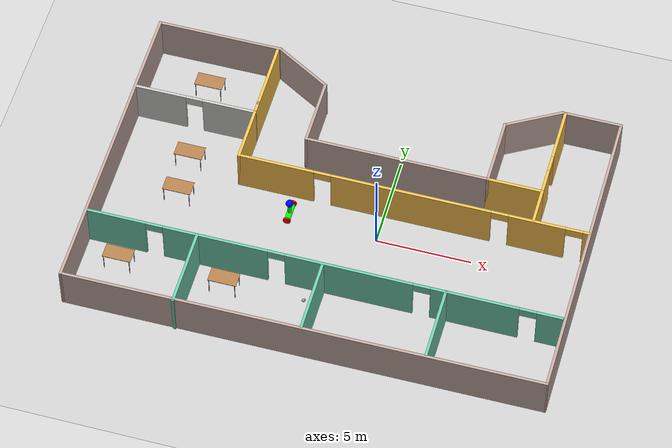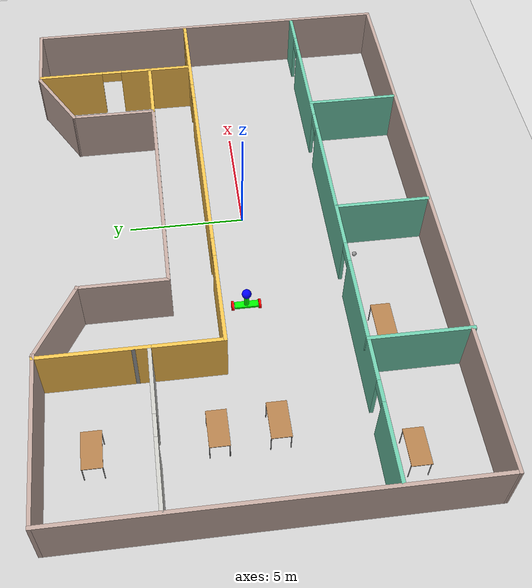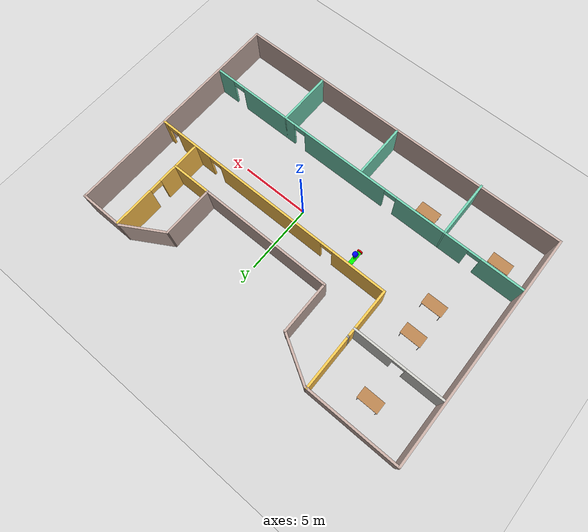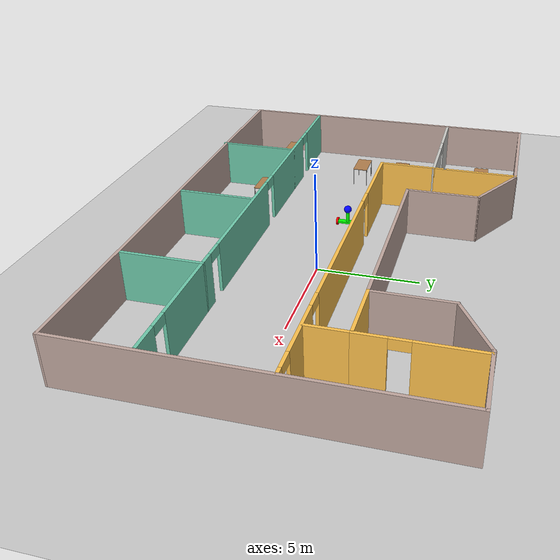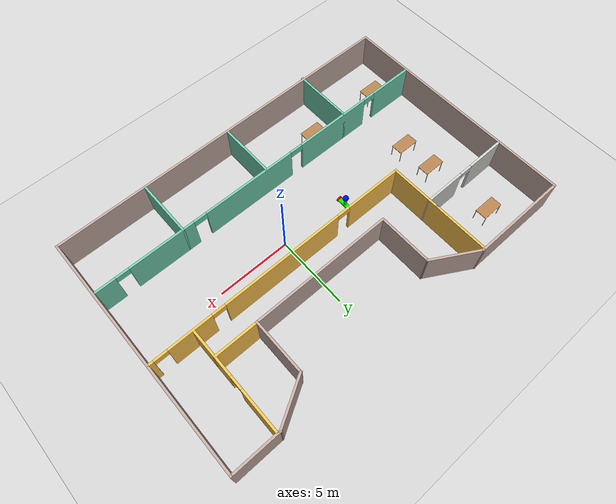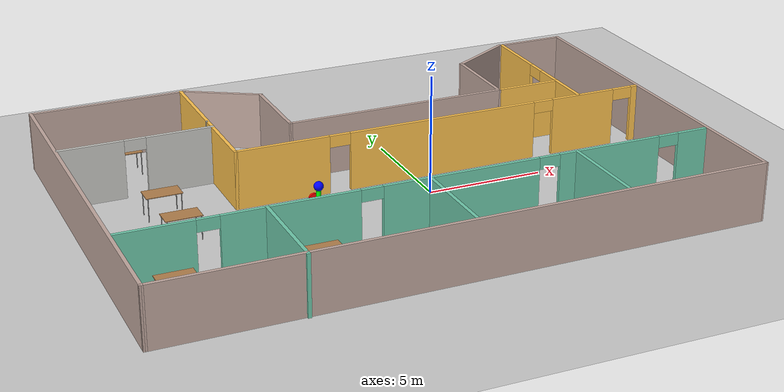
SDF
<sdf version="1.6">
 <world name="default">
  <model name="ground_plane">
   <static>1</static>
   <link name="link">
    <collision name="collision">
     <geometry><plane><normal>0 0 1</normal><size>100 100</size></plane></geometry>
     <surface>
      <contact><collide_bitmask>65535</collide_bitmask></contact>
      <friction><ode><mu>100</mu><mu2>50</mu2></ode></friction>
     </surface>
    </collision>
    <visual name="visual">
     <cast_shadows>0</cast_shadows>
     <geometry><plane><normal>0 0 1</normal><size>100 100</size></plane></geometry>
     <material>
      <script><uri>file://media/materials/scripts/gazebo.material</uri><name>Gazebo/Grey</name></script>
     </material>
    </visual>
   </link>
  </model>
  <model name="table">
   <static>1</static>
   <link name="link">
    <collision name="surface">
     <pose>0 0 1 0 -0 0</pose>
     <geometry><box><size>1.5 0.8 0.03</size></box></geometry>
     <surface><friction><ode><mu>0.6</mu><mu2>0.6</mu2></ode></friction></surface>
    </collision>
    <visual name="visual1">
     <pose>0 0 1 0 -0 0</pose>
     <geometry><box><size>1.5 0.8 0.03</size></box></geometry>
     <material>
      <script><uri>file://media/materials/scripts/gazebo.material</uri><name>Gazebo/Wood</name></script>
     </material>
    </visual>
    <collision name="front_left_leg">
     <pose>0.68 0.38 0.5 0 -0 0</pose>
     <geometry><cylinder><radius>0.02</radius><length>1</length></cylinder></geometry>
    </collision>
    <visual name="front_left_leg">
     <pose>0.68 0.38 0.5 0 -0 0</pose>
     <geometry><cylinder><radius>0.02</radius><length>1</length></cylinder></geometry>
     <material>
      <script><uri>file://media/materials/scripts/gazebo.material</uri><name>Gazebo/Grey</name></script>
     </material>
    </visual>
    <collision name="front_right_leg">
     <pose>0.68 -0.38 0.5 0 -0 0</pose>
     <geometry><cylinder><radius>0.02</radius><length>1</length></cylinder></geometry>
    </collision>
    <visual name="front_right_leg">
     <pose>0.68 -0.38 0.5 0 -0 0</pose>
     <geometry><cylinder><radius>0.02</radius><length>1</length></cylinder></geometry>
     <material>
      <script><uri>file://media/materials/scripts/gazebo.material</uri><name>Gazebo/Grey</name></script>
     </material>
    </visual>
    <collision name="back_right_leg">
     <pose>-0.68 -0.38 0.5 0 -0 0</pose>
     <geometry><cylinder><radius>0.02</radius><length>1</length></cylinder></geometry>
    </collision>
    <visual name="back_right_leg">
     <pose>-0.68 -0.38 0.5 0 -0 0</pose>
     <geometry><cylinder><radius>0.02</radius><length>1</length></cylinder></geometry>
     <material>
      <script><uri>file://media/materials/scripts/gazebo.material</uri><name>Gazebo/Grey</name></script>
     </material>
    </visual>
    <collision name="back_left_leg">
     <pose>-0.68 0.38 0.5 0 -0 0</pose>
     <geometry><cylinder><radius>0.02</radius><length>1</length></cylinder></geometry>
    </collision>
    <visual name="back_left_leg">
     <pose>-0.68 0.38 0.5 0 -0 0</pose>
     <geometry><cylinder><radius>0.02</radius><length>1</length></cylinder></geometry>
     <material>
      <script><uri>file://media/materials/scripts/gazebo.material</uri><name>Gazebo/Grey</name></script>
     </material>
    </visual>
   </link>
   <pose>-10.9259 6.86543 0 0 -0 0</pose>
  </model>
  <model name="table_1">
   <static>1</static>
   <link name="link">
    <collision name="surface">
     <pose>0 0 1 0 -0 0</pose>
     <geometry><box><size>1.5 0.8 0.03</size></box></geometry>
     <surface><friction><ode><mu>0.6</mu><mu2>0.6</mu2></ode></friction></surface>
    </collision>
    <visual name="visual1">
     <pose>0 0 1 0 -0 0</pose>
     <geometry><box><size>1.5 0.8 0.03</size></box></geometry>
     <material>
      <script><uri>file://media/materials/scripts/gazebo.material</uri><name>Gazebo/Wood</name></script>
     </material>
    </visual>
    <collision name="front_left_leg">
     <pose>0.68 0.38 0.5 0 -0 0</pose>
     <geometry><cylinder><radius>0.02</radius><length>1</length></cylinder></geometry>
    </collision>
    <visual name="front_left_leg">
     <pose>0.68 0.38 0.5 0 -0 0</pose>
     <geometry><cylinder><radius>0.02</radius><length>1</length></cylinder></geometry>
     <material>
      <script><uri>file://media/materials/scripts/gazebo.material</uri><name>Gazebo/Grey</name></script>
     </material>
    </visual>
    <collision name="front_right_leg">
     <pose>0.68 -0.38 0.5 0 -0 0</pose>
     <geometry><cylinder><radius>0.02</radius><length>1</length></cylinder></geometry>
    </collision>
    <visual name="front_right_leg">
     <pose>0.68 -0.38 0.5 0 -0 0</pose>
     <geometry><cylinder><radius>0.02</radius><length>1</length></cylinder></geometry>
     <material>
      <script><uri>file://media/materials/scripts/gazebo.material</uri><name>Gazebo/Grey</name></script>
     </material>
    </visual>
    <collision name="back_right_leg">
     <pose>-0.68 -0.38 0.5 0 -0 0</pose>
     <geometry><cylinder><radius>0.02</radius><length>1</length></cylinder></geometry>
    </collision>
    <visual name="back_right_leg">
     <pose>-0.68 -0.38 0.5 0 -0 0</pose>
     <geometry><cylinder><radius>0.02</radius><length>1</length></cylinder></geometry>
     <material>
      <script><uri>file://media/materials/scripts/gazebo.material</uri><name>Gazebo/Grey</name></script>
     </material>
    </visual>
    <collision name="back_left_leg">
     <pose>-0.68 0.38 0.5 0 -0 0</pose>
     <geometry><cylinder><radius>0.02</radius><length>1</length></cylinder></geometry>
    </collision>
    <visual name="back_left_leg">
     <pose>-0.68 0.38 0.5 0 -0 0</pose>
     <geometry><cylinder><radius>0.02</radius><length>1</length></cylinder></geometry>
     <material>
      <script><uri>file://media/materials/scripts/gazebo.material</uri><name>Gazebo/Grey</name></script>
     </material>
    </visual>
   </link>
   <pose>-10.6064 2.22277 0 0 -0 0</pose>
  </model>
  <model name="table_2">
   <static>1</static>
   <link name="link">
    <collision name="surface">
     <pose>0 0 1 0 -0 0</pose>
     <geometry><box><size>1.5 0.8 0.03</size></box></geometry>
     <surface><friction><ode><mu>0.6</mu><mu2>0.6</mu2></ode></friction></surface>
    </collision>
    <visual name="visual1">
     <pose>0 0 1 0 -0 0</pose>
     <geometry><box><size>1.5 0.8 0.03</size></box></geometry>
     <material>
      <script><uri>file://media/materials/scripts/gazebo.material</uri><name>Gazebo/Wood</name></script>
     </material>
    </visual>
    <collision name="front_left_leg">
     <pose>0.68 0.38 0.5 0 -0 0</pose>
     <geometry><cylinder><radius>0.02</radius><length>1</length></cylinder></geometry>
    </collision>
    <visual name="front_left_leg">
     <pose>0.68 0.38 0.5 0 -0 0</pose>
     <geometry><cylinder><radius>0.02</radius><length>1</length></cylinder></geometry>
     <material>
      <script><uri>file://media/materials/scripts/gazebo.material</uri><name>Gazebo/Grey</name></script>
     </material>
    </visual>
    <collision name="front_right_leg">
     <pose>0.68 -0.38 0.5 0 -0 0</pose>
     <geometry><cylinder><radius>0.02</radius><length>1</length></cylinder></geometry>
    </collision>
    <visual name="front_right_leg">
     <pose>0.68 -0.38 0.5 0 -0 0</pose>
     <geometry><cylinder><radius>0.02</radius><length>1</length></cylinder></geometry>
     <material>
      <script><uri>file://media/materials/scripts/gazebo.material</uri><name>Gazebo/Grey</name></script>
     </material>
    </visual>
    <collision name="back_right_leg">
     <pose>-0.68 -0.38 0.5 0 -0 0</pose>
     <geometry><cylinder><radius>0.02</radius><length>1</length></cylinder></geometry>
    </collision>
    <visual name="back_right_leg">
     <pose>-0.68 -0.38 0.5 0 -0 0</pose>
     <geometry><cylinder><radius>0.02</radius><length>1</length></cylinder></geometry>
     <material>
      <script><uri>file://media/materials/scripts/gazebo.material</uri><name>Gazebo/Grey</name></script>
     </material>
    </visual>
    <collision name="back_left_leg">
     <pose>-0.68 0.38 0.5 0 -0 0</pose>
     <geometry><cylinder><radius>0.02</radius><length>1</length></cylinder></geometry>
    </collision>
    <visual name="back_left_leg">
     <pose>-0.68 0.38 0.5 0 -0 0</pose>
     <geometry><cylinder><radius>0.02</radius><length>1</length></cylinder></geometry>
     <material>
      <script><uri>file://media/materials/scripts/gazebo.material</uri><name>Gazebo/Grey</name></script>
     </material>
    </visual>
   </link>
   <pose>-10.5195 -0.069603 0 0 -0 0</pose>
  </model>
  <model name="RobotModel_clone">
   <link name="link_0">
    <pose>0 0 0.2 0 -0 0</pose>
    <inertial>
     <mass>1</mass>
     <inertia>
      <ixx>0.166667</ixx>
      <ixy>0</ixy>
      <ixz>0</ixz>
      <iyy>0.166667</iyy>
      <iyz>0</iyz>
      <izz>0.166667</izz>
     </inertia>
    </inertial>
    <visual name="visual">
     <geometry><box><size>0.3 1 0.1</size></box></geometry>
     <material>
      <lighting>1</lighting>
      <script><uri>file://media/materials/scripts/gazebo.material</uri><name>Gazebo/Grey</name></script>
      <ambient>0 1 0 1</ambient>
      <diffuse>0.7 0.7 0.7 1</diffuse>
      <specular>0.01 0.01 0.01 1</specular>
      <emissive>0 0 0 1</emissive>
      <shader type="vertex"><normal_map>__default__</normal_map></shader>
     </material>
    </visual>
    <collision name="collision">
     <geometry><box><size>0.3 1 0.1</size></box></geometry>
     <surface>
      <friction>
       <ode><mu>1</mu><mu2>1</mu2><fdir1>0 0 0</fdir1><slip1>0</slip1><slip2>0</slip2></ode>
       <torsional>
        <coefficient>1</coefficient>
        <patch_radius>0</patch_radius>
        <surface_radius>0</surface_radius>
        <use_patch_radius>1</use_patch_radius>
        <ode><slip>0</slip></ode>
       </torsional>
      </friction>
      <bounce><restitution_coefficient>0</restitution_coefficient><threshold>1e+06</threshold></bounce>
      <contact>
       <collide_without_contact>0</collide_without_contact>
       <collide_without_contact_bitmask>1</collide_without_contact_bitmask>
       <collide_bitmask>1</collide_bitmask>
       <ode>
        <soft_cfm>0</soft_cfm>
        <soft_erp>0.2</soft_erp>
        <kp>1e+13</kp>
        <kd>1</kd>
        <max_vel>0.01</max_vel>
        <min_depth>0</min_depth>
       </ode>
       <bullet>
        <split_impulse>1</split_impulse>
        <split_impulse_penetration_threshold>-0.01</split_impulse_penetration_threshold>
        <soft_cfm>0</soft_cfm>
        <soft_erp>0.2</soft_erp>
        <kp>1e+13</kp>
        <kd>1</kd>
       </bullet>
      </contact>
     </surface>
    </collision>
   </link>
   <link name="link_1">
    <pose>0 -0.550023 0.200016 1.5707 -0 0</pose>
    <inertial>
     <mass>1</mass>
     <inertia><ixx>0.145833</ixx><ixy>0</ixy><ixz>0</ixz><iyy>0.145833</iyy><iyz>0</iyz><izz>0.125</izz></inertia>
    </inertial>
    <visual name="visual">
     <geometry><cylinder><radius>0.2</radius><length>0.1</length></cylinder></geometry>
     <material>
      <lighting>1</lighting>
      <script><uri>file://media/materials/scripts/gazebo.material</uri><name>Gazebo/Grey</name></script>
      <ambient>1 0 0 1</ambient>
      <diffuse>0.7 0.7 0.7 1</diffuse>
      <specular>0.01 0.01 0.01 1</specular>
      <emissive>0 0 0 1</emissive>
      <shader type="vertex"><normal_map>__default__</normal_map></shader>
     </material>
    </visual>
    <collision name="collision">
     <geometry><cylinder><radius>0.2</radius><length>0.1</length></cylinder></geometry>
     <surface>
      <friction>
       <ode><mu>1</mu><mu2>1</mu2><fdir1>0 0 0</fdir1><slip1>0</slip1><slip2>0</slip2></ode>
       <torsional>
        <coefficient>1</coefficient>
        <patch_radius>0</patch_radius>
        <surface_radius>0</surface_radius>
        <use_patch_radius>1</use_patch_radius>
        <ode><slip>0</slip></ode>
       </torsional>
      </friction>
      <bounce><restitution_coefficient>0</restitution_coefficient><threshold>1e+06</threshold></bounce>
      <contact>
       <collide_without_contact>0</collide_without_contact>
       <collide_without_contact_bitmask>1</collide_without_contact_bitmask>
       <collide_bitmask>1</collide_bitmask>
       <ode>
        <soft_cfm>0</soft_cfm>
        <soft_erp>0.2</soft_erp>
        <kp>1e+13</kp>
        <kd>1</kd>
        <max_vel>0.01</max_vel>
        <min_depth>0</min_depth>
       </ode>
       <bullet>
        <split_impulse>1</split_impulse>
        <split_impulse_penetration_threshold>-0.01</split_impulse_penetration_threshold>
        <soft_cfm>0</soft_cfm>
        <soft_erp>0.2</soft_erp>
        <kp>1e+13</kp>
        <kd>1</kd>
       </bullet>
      </contact>
     </surface>
    </collision>
   </link>
   <link name="link_1_clone">
    <pose>0 0.580446 0.200008 1.57071 -0 0</pose>
    <inertial>
     <mass>1</mass>
     <inertia><ixx>0.145833</ixx><ixy>0</ixy><ixz>0</ixz><iyy>0.145833</iyy><iyz>0</iyz><izz>0.125</izz></inertia>
    </inertial>
    <visual name="visual">
     <geometry><cylinder><radius>0.2</radius><length>0.1</length></cylinder></geometry>
     <material>
      <lighting>1</lighting>
      <script><uri>file://media/materials/scripts/gazebo.material</uri><name>Gazebo/Grey</name></script>
      <ambient>1 0 0 1</ambient>
      <diffuse>0.7 0.7 0.7 1</diffuse>
      <specular>0.01 0.01 0.01 1</specular>
      <emissive>0 0 0 1</emissive>
      <shader type="vertex"><normal_map>__default__</normal_map></shader>
     </material>
    </visual>
    <collision name="collision">
     <geometry><cylinder><radius>0.2</radius><length>0.1</length></cylinder></geometry>
     <surface>
      <friction>
       <ode><mu>1</mu><mu2>1</mu2><fdir1>0 0 0</fdir1><slip1>0</slip1><slip2>0</slip2></ode>
       <torsional>
        <coefficient>1</coefficient>
        <patch_radius>0</patch_radius>
        <surface_radius>0</surface_radius>
        <use_patch_radius>1</use_patch_radius>
        <ode><slip>0</slip></ode>
       </torsional>
      </friction>
      <bounce><restitution_coefficient>0</restitution_coefficient><threshold>1e+06</threshold></bounce>
      <contact>
       <collide_without_contact>0</collide_without_contact>
       <collide_without_contact_bitmask>1</collide_without_contact_bitmask>
       <collide_bitmask>1</collide_bitmask>
       <ode>
        <soft_cfm>0</soft_cfm>
        <soft_erp>0.2</soft_erp>
        <kp>1e+13</kp>
        <kd>1</kd>
        <max_vel>0.01</max_vel>
        <min_depth>0</min_depth>
       </ode>
       <bullet>
        <split_impulse>1</split_impulse>
        <split_impulse_penetration_threshold>-0.01</split_impulse_penetration_threshold>
        <soft_cfm>0</soft_cfm>
        <soft_erp>0.2</soft_erp>
        <kp>1e+13</kp>
        <kd>1</kd>
       </bullet>
      </contact>
     </surface>
    </collision>
   </link>
   <link name="link_2">
    <pose>0 0 0.5 0 -0 0</pose>
    <inertial>
     <mass>1</mass>
     <inertia><ixx>0.145833</ixx><ixy>0</ixy><ixz>0</ixz><iyy>0.145833</iyy><iyz>0</iyz><izz>0.125</izz></inertia>
    </inertial>
    <visual name="visual">
     <geometry><cylinder><radius>0.1</radius><length>0.5</length></cylinder></geometry>
     <material>
      <lighting>1</lighting>
      <script><uri>file://media/materials/scripts/gazebo.material</uri><name>Gazebo/Grey</name></script>
      <shader type="pixel"><normal_map>__default__</normal_map></shader>
      <ambient>0 1 0 1</ambient>
      <diffuse>0.7 0.7 0.7 1</diffuse>
      <specular>0.01 0.01 0.01 1</specular>
      <emissive>0 0 0 1</emissive>
     </material>
    </visual>
    <collision name="collision">
     <geometry><cylinder><radius>0.1</radius><length>0.5</length></cylinder></geometry>
     <surface>
      <friction>
       <ode><mu>1</mu><mu2>1</mu2><fdir1>0 0 0</fdir1><slip1>0</slip1><slip2>0</slip2></ode>
       <torsional>
        <coefficient>1</coefficient>
        <patch_radius>0</patch_radius>
        <surface_radius>0</surface_radius>
        <use_patch_radius>1</use_patch_radius>
        <ode><slip>0</slip></ode>
       </torsional>
      </friction>
      <bounce><restitution_coefficient>0</restitution_coefficient><threshold>1e+06</threshold></bounce>
      <contact>
       <collide_without_contact>0</collide_without_contact>
       <collide_without_contact_bitmask>1</collide_without_contact_bitmask>
       <collide_bitmask>1</collide_bitmask>
       <ode>
        <soft_cfm>0</soft_cfm>
        <soft_erp>0.2</soft_erp>
        <kp>1e+13</kp>
        <kd>1</kd>
        <max_vel>0.01</max_vel>
        <min_depth>0</min_depth>
       </ode>
       <bullet>
        <split_impulse>1</split_impulse>
        <split_impulse_penetration_threshold>-0.01</split_impulse_penetration_threshold>
        <soft_cfm>0</soft_cfm>
        <soft_erp>0.2</soft_erp>
        <kp>1e+13</kp>
        <kd>1</kd>
       </bullet>
      </contact>
     </surface>
    </collision>
   </link>
   <link name="link_3">
    <pose>0 -0 0.95 0 -0 0</pose>
    <inertial>
     <mass>1</mass>
     <inertia><ixx>0.1</ixx><ixy>0</ixy><ixz>0</ixz><iyy>0.1</iyy><iyz>0</iyz><izz>0.1</izz></inertia>
    </inertial>
    <visual name="visual">
     <geometry><sphere><radius>0.2</radius></sphere></geometry>
     <material>
      <lighting>1</lighting>
      <script><uri>file://media/materials/scripts/gazebo.material</uri><name>Gazebo/Grey</name></script>
      <shader type="pixel"><normal_map>__default__</normal_map></shader>
      <ambient>0 0 1 1</ambient>
      <diffuse>0.7 0.7 0.7 1</diffuse>
      <specular>0.01 0.01 0.01 1</specular>
      <emissive>0 0 0 1</emissive>
     </material>
    </visual>
    <collision name="collision">
     <geometry><sphere><radius>0.2</radius></sphere></geometry>
     <surface>
      <friction>
       <ode><mu>1</mu><mu2>1</mu2><fdir1>0 0 0</fdir1><slip1>0</slip1><slip2>0</slip2></ode>
       <torsional>
        <coefficient>1</coefficient>
        <patch_radius>0</patch_radius>
        <surface_radius>0</surface_radius>
        <use_patch_radius>1</use_patch_radius>
        <ode><slip>0</slip></ode>
       </torsional>
      </friction>
      <bounce><restitution_coefficient>0</restitution_coefficient><threshold>1e+06</threshold></bounce>
      <contact>
       <collide_without_contact>0</collide_without_contact>
       <collide_without_contact_bitmask>1</collide_without_contact_bitmask>
       <collide_bitmask>1</collide_bitmask>
       <ode>
        <soft_cfm>0</soft_cfm>
        <soft_erp>0.2</soft_erp>
        <kp>1e+13</kp>
        <kd>1</kd>
        <max_vel>0.01</max_vel>
        <min_depth>0</min_depth>
       </ode>
       <bullet>
        <split_impulse>1</split_impulse>
        <split_impulse_penetration_threshold>-0.01</split_impulse_penetration_threshold>
        <soft_cfm>0</soft_cfm>
        <soft_erp>0.2</soft_erp>
        <kp>1e+13</kp>
        <kd>1</kd>
       </bullet>
      </contact>
     </surface>
    </collision>
   </link>
   <joint name="link_0_JOINT_0" type="revolute">
    <parent>link_0</parent>
    <child>link_1</child>
    <axis>
     <xyz>0 0 1</xyz>
     <use_parent_model_frame>0</use_parent_model_frame>
     <limit>
      <lower>-1.79769e+308</lower>
      <upper>1.79769e+308</upper>
      <effort>-1</effort>
      <velocity>-1</velocity>
     </limit>
     <dynamics>
      <spring_reference>0</spring_reference>
      <spring_stiffness>0</spring_stiffness>
      <damping>0</damping>
      <friction>0</friction>
     </dynamics>
    </axis>
    <physics>
     <ode><limit><cfm>0</cfm><erp>0.2</erp></limit><suspension><cfm>0</cfm><erp>0.2</erp></suspension></ode>
    </physics>
   </joint>
   <joint name="link_0_JOINT_1" type="revolute">
    <parent>link_0</parent>
    <child>link_1_clone</child>
    <axis>
     <xyz>0 0 1</xyz>
     <use_parent_model_frame>0</use_parent_model_frame>
     <limit>
      <lower>-1.79769e+308</lower>
      <upper>1.79769e+308</upper>
      <effort>-1</effort>
      <velocity>-1</velocity>
     </limit>
     <dynamics>
      <spring_reference>0</spring_reference>
      <spring_stiffness>0</spring_stiffness>
      <damping>0</damping>
     </dynamics>
    </axis>
    <physics>
     <ode><limit><cfm>0</cfm><erp>0.2</erp></limit><suspension><cfm>0</cfm><erp>0.2</erp></suspension></ode>
    </physics>
   </joint>
   <joint name="link_2_JOINT_2" type="revolute">
    <parent>link_0</parent>
    <child>link_2</child>
    <axis>
     <xyz>0 0 1</xyz>
     <use_parent_model_frame>0</use_parent_model_frame>
     <limit>
      <lower>-1.79769e+308</lower>
      <upper>1.79769e+308</upper>
      <effort>-1</effort>
      <velocity>-1</velocity>
     </limit>
     <dynamics>
      <spring_reference>0</spring_reference>
      <spring_stiffness>0</spring_stiffness>
      <damping>0</damping>
     </dynamics>
    </axis>
    <physics>
     <ode><limit><cfm>0</cfm><erp>0.2</erp></limit><suspension><cfm>0</cfm><erp>0.2</erp></suspension></ode>
    </physics>
   </joint>
   <joint name="link_2_JOINT_3" type="revolute">
    <parent>link_2</parent>
    <child>link_3</child>
    <axis>
     <xyz>0 0 1</xyz>
     <use_parent_model_frame>0</use_parent_model_frame>
     <limit>
      <lower>-1.79769e+308</lower>
      <upper>1.79769e+308</upper>
      <effort>-1</effort>
      <velocity>-1</velocity>
     </limit>
     <dynamics>
      <spring_reference>0</spring_reference>
      <spring_stiffness>0</spring_stiffness>
      <damping>0</damping>
     </dynamics>
    </axis>
    <physics>
     <ode><limit><cfm>0</cfm><erp>0.2</erp></limit><suspension><cfm>0</cfm><erp>0.2</erp></suspension></ode>
    </physics>
   </joint>
   <static>0</static>
   <pose>-4.71158 0.411878 -8e-06 7e-06 -0 0</pose>
  </model>
  <model name="Building">
   <pose>-1.76271 0.50053 0 0 -0 0</pose>
   <link name="Wall_10">
    <collision name="Wall_10_Collision">
     <geometry><box><size>3.25 0.15 2.5</size></box></geometry>
     <pose>0 0 1.25 0 -0 0</pose>
    </collision>
    <visual name="Wall_10_Visual">
     <pose>0 0 1.25 0 -0 0</pose>
     <geometry><box><size>3.25 0.15 2.5</size></box></geometry>
     <material>
      <script><uri>file://media/materials/scripts/gazebo.material</uri><name>Gazebo/Grey</name></script>
      <ambient>0.760784 0.662745 0.627451 1</ambient>
     </material>
     <meta><layer>0</layer></meta>
    </visual>
    <pose>10.8929 8.18406 0 0 -0 0</pose>
   </link>
   <link name="Wall_11">
    <collision name="Wall_11_Collision">
     <geometry><box><size>16.5 0.15 2.5</size></box></geometry>
     <pose>0 0 1.25 0 -0 0</pose>
    </collision>
    <visual name="Wall_11_Visual">
     <pose>0 0 1.25 0 -0 0</pose>
     <geometry><box><size>16.5 0.15 2.5</size></box></geometry>
     <material>
      <script><uri>file://media/materials/scripts/gazebo.material</uri><name>Gazebo/Grey</name></script>
      <ambient>0.760784 0.662745 0.627451 1</ambient>
     </material>
     <meta><layer>0</layer></meta>
    </visual>
    <pose>12.4429 0.009057 0 0 0 -1.5708</pose>
   </link>
   <link name="Wall_12">
    <collision name="Wall_12_Collision">
     <geometry><box><size>25.0362 0.15 2.5</size></box></geometry>
     <pose>0 0 1.25 0 -0 0</pose>
    </collision>
    <visual name="Wall_12_Visual">
     <pose>0 0 1.25 0 -0 0</pose>
     <geometry><box><size>25.0362 0.15 2.5</size></box></geometry>
     <material>
      <script><uri>file://media/materials/scripts/gazebo.material</uri><name>Gazebo/Grey</name></script>
      <ambient>0.760784 0.662745 0.627451 1</ambient>
     </material>
     <meta><layer>0</layer></meta>
    </visual>
    <pose>0 -8.22844 0 0 0 -3.13657</pose>
   </link>
   <link name="Wall_2">
    <collision name="Wall_2_Collision">
     <geometry><box><size>16.75 0.15 2.5</size></box></geometry>
     <pose>0 0 1.25 0 -0 0</pose>
    </collision>
    <visual name="Wall_2_Visual">
     <pose>0 0 1.25 0 -0 0</pose>
     <geometry><box><size>16.75 0.15 2.5</size></box></geometry>
     <material>
      <script><uri>file://media/materials/scripts/gazebo.material</uri><name>Gazebo/Grey</name></script>
      <ambient>0.760784 0.662745 0.627451 1</ambient>
     </material>
     <meta><layer>0</layer></meta>
    </visual>
    <pose>-12.4429 0.009057 0 0 0 -1.5708</pose>
   </link>
   <link name="Wall_24">
    <collision name="Wall_24_Collision">
     <geometry><box><size>0.15 0.15 2.5</size></box></geometry>
     <pose>0 0 1.25 0 -0 0</pose>
    </collision>
    <visual name="Wall_24_Visual">
     <pose>0 0 1.25 0 -0 0</pose>
     <geometry><box><size>0.15 0.15 2.5</size></box></geometry>
     <material>
      <script><uri>file://media/materials/scripts/gazebo.material</uri><name>Gazebo/Grey</name></script>
      <ambient>0 0 0 0</ambient>
     </material>
     <meta><layer>0</layer></meta>
    </visual>
    <pose>-5.97046 4.57329 0 0 -0 0</pose>
   </link>
   <link name="Wall_25">
    <pose>-9.15897 3.96574 0 0 -0 0.002757</pose>
    <visual name="Wall_25_Visual_0">
     <pose>-1.89266 0 1.25 0 -0 0</pose>
     <geometry><box><size>2.74392 0.15 2.5</size></box></geometry>
     <material>
      <script><uri>file://media/materials/scripts/gazebo.material</uri><name>Gazebo/CeilingTiled</name></script>
      <ambient>1 1 1 1</ambient>
     </material>
     <meta><layer>0</layer></meta>
    </visual>
    <collision name="Wall_25_Collision_0">
     <geometry><box><size>2.74392 0.15 2.5</size></box></geometry>
     <pose>-1.89266 0 1.25 0 -0 0</pose>
    </collision>
    <visual name="Wall_25_Visual_1">
     <pose>1.82196 0 1.25 0 -0 0</pose>
     <geometry><box><size>2.88532 0.15 2.5</size></box></geometry>
     <material>
      <script><uri>file://media/materials/scripts/gazebo.material</uri><name>Gazebo/CeilingTiled</name></script>
      <ambient>1 1 1 1</ambient>
     </material>
     <meta><layer>0</layer></meta>
    </visual>
    <collision name="Wall_25_Collision_1">
     <geometry><box><size>2.88532 0.15 2.5</size></box></geometry>
     <pose>1.82196 0 1.25 0 -0 0</pose>
    </collision>
    <visual name="Wall_25_Visual_2">
     <pose>-0.070705 0 2.25 0 -0 0</pose>
     <geometry><box><size>0.9 0.15 0.5</size></box></geometry>
     <material>
      <script><uri>file://media/materials/scripts/gazebo.material</uri><name>Gazebo/CeilingTiled</name></script>
      <ambient>1 1 1 1</ambient>
     </material>
     <meta><layer>0</layer></meta>
    </visual>
    <collision name="Wall_25_Collision_2">
     <geometry><box><size>0.9 0.15 0.5</size></box></geometry>
     <pose>-0.070705 0 2.25 0 -0 0</pose>
    </collision>
   </link>
   <link name="Wall_26">
    <collision name="Wall_26_Collision">
     <geometry><box><size>4.48241 0.15 2.5</size></box></geometry>
     <pose>0 0 1.25 0 -0 0</pose>
    </collision>
    <visual name="Wall_26_Visual">
     <pose>0 0 1.25 0 -0 0</pose>
     <geometry><box><size>4.48241 0.15 2.5</size></box></geometry>
     <material>
      <script><uri>file://media/materials/scripts/gazebo.material</uri><name>Gazebo/Grey</name></script>
      <ambient>1 0.764706 0.305882 1</ambient>
     </material>
     <meta><layer>0</layer></meta>
    </visual>
    <pose>-5.9694 6.14074 0 0 -0 1.5708</pose>
   </link>
   <link name="Wall_34">
    <pose>-0.025499 -4.23651 0 0 -0 0</pose>
    <visual name="Wall_34_Visual_0">
     <pose>-10.8138 0 1.25 0 -0 0</pose>
     <geometry><box><size>3.12241 0.15 2.5</size></box></geometry>
     <material>
      <script><uri>file://media/materials/scripts/gazebo.material</uri><name>Gazebo/Grey</name></script>
      <ambient>0.435294 0.796078 0.67451 1</ambient>
     </material>
     <meta><layer>0</layer></meta>
    </visual>
    <collision name="Wall_34_Collision_0">
     <geometry><box><size>3.12241 0.15 2.5</size></box></geometry>
     <pose>-10.8138 0 1.25 0 -0 0</pose>
    </collision>
    <visual name="Wall_34_Visual_1">
     <pose>-5.60111 0 1.25 0 -0 0</pose>
     <geometry><box><size>5.50295 0.15 2.5</size></box></geometry>
     <material>
      <script><uri>file://media/materials/scripts/gazebo.material</uri><name>Gazebo/Grey</name></script>
      <ambient>0.435294 0.796078 0.67451 1</ambient>
     </material>
     <meta><layer>0</layer></meta>
    </visual>
    <collision name="Wall_34_Collision_1">
     <geometry><box><size>5.50295 0.15 2.5</size></box></geometry>
     <pose>-5.60111 0 1.25 0 -0 0</pose>
    </collision>
    <visual name="Wall_34_Visual_2">
     <pose>1.36681 0 1.25 0 -0 0</pose>
     <geometry><box><size>6.63288 0.15 2.5</size></box></geometry>
     <material>
      <script><uri>file://media/materials/scripts/gazebo.material</uri><name>Gazebo/Grey</name></script>
      <ambient>0.435294 0.796078 0.67451 1</ambient>
     </material>
     <meta><layer>0</layer></meta>
    </visual>
    <collision name="Wall_34_Collision_2">
     <geometry><box><size>6.63288 0.15 2.5</size></box></geometry>
     <pose>1.36681 0 1.25 0 -0 0</pose>
    </collision>
    <visual name="Wall_34_Visual_3">
     <pose>7.85047 0 1.25 0 -0 0</pose>
     <geometry><box><size>4.53444 0.15 2.5</size></box></geometry>
     <material>
      <script><uri>file://media/materials/scripts/gazebo.material</uri><name>Gazebo/Grey</name></script>
      <ambient>0.435294 0.796078 0.67451 1</ambient>
     </material>
     <meta><layer>0</layer></meta>
    </visual>
    <collision name="Wall_34_Collision_3">
     <geometry><box><size>4.53444 0.15 2.5</size></box></geometry>
     <pose>7.85047 0 1.25 0 -0 0</pose>
    </collision>
    <visual name="Wall_34_Visual_4">
     <pose>11.6963 0 1.25 0 -0 0</pose>
     <geometry><box><size>1.35731 0.15 2.5</size></box></geometry>
     <material>
      <script><uri>file://media/materials/scripts/gazebo.material</uri><name>Gazebo/Grey</name></script>
      <ambient>0.435294 0.796078 0.67451 1</ambient>
     </material>
     <meta><layer>0</layer></meta>
    </visual>
    <collision name="Wall_34_Collision_4">
     <geometry><box><size>1.35731 0.15 2.5</size></box></geometry>
     <pose>11.6963 0 1.25 0 -0 0</pose>
    </collision>
    <visual name="Wall_34_Visual_5">
     <pose>-8.80259 0 2.25 0 -0 0</pose>
     <geometry><box><size>0.9 0.15 0.5</size></box></geometry>
     <material>
      <script><uri>file://media/materials/scripts/gazebo.material</uri><name>Gazebo/Grey</name></script>
      <ambient>0.435294 0.796078 0.67451 1</ambient>
     </material>
     <meta><layer>0</layer></meta>
    </visual>
    <collision name="Wall_34_Collision_5">
     <geometry><box><size>0.9 0.15 0.5</size></box></geometry>
     <pose>-8.80259 0 2.25 0 -0 0</pose>
    </collision>
    <visual name="Wall_34_Visual_6">
     <pose>-2.39964 0 2.25 0 -0 0</pose>
     <geometry><box><size>0.9 0.15 0.5</size></box></geometry>
     <material>
      <script><uri>file://media/materials/scripts/gazebo.material</uri><name>Gazebo/Grey</name></script>
      <ambient>0.435294 0.796078 0.67451 1</ambient>
     </material>
     <meta><layer>0</layer></meta>
    </visual>
    <collision name="Wall_34_Collision_6">
     <geometry><box><size>0.9 0.15 0.5</size></box></geometry>
     <pose>-2.39964 0 2.25 0 -0 0</pose>
    </collision>
    <visual name="Wall_34_Visual_7">
     <pose>5.13325 0 2.25 0 -0 0</pose>
     <geometry><box><size>0.9 0.15 0.5</size></box></geometry>
     <material>
      <script><uri>file://media/materials/scripts/gazebo.material</uri><name>Gazebo/Grey</name></script>
      <ambient>0.435294 0.796078 0.67451 1</ambient>
     </material>
     <meta><layer>0</layer></meta>
    </visual>
    <collision name="Wall_34_Collision_7">
     <geometry><box><size>0.9 0.15 0.5</size></box></geometry>
     <pose>5.13325 0 2.25 0 -0 0</pose>
    </collision>
    <visual name="Wall_34_Visual_8">
     <pose>10.5677 0 2.25 0 -0 0</pose>
     <geometry><box><size>0.9 0.15 0.5</size></box></geometry>
     <material>
      <script><uri>file://media/materials/scripts/gazebo.material</uri><name>Gazebo/Grey</name></script>
      <ambient>0.435294 0.796078 0.67451 1</ambient>
     </material>
     <meta><layer>0</layer></meta>
    </visual>
    <collision name="Wall_34_Collision_8">
     <geometry><box><size>0.9 0.15 0.5</size></box></geometry>
     <pose>10.5677 0 2.25 0 -0 0</pose>
    </collision>
   </link>
   <link name="Wall_36">
    <collision name="Wall_36_Collision">
     <geometry><box><size>4.25 0.15 2.5</size></box></geometry>
     <pose>0 0 1.25 0 -0 0</pose>
    </collision>
    <visual name="Wall_36_Visual">
     <pose>0 0 1.25 0 -0 0</pose>
     <geometry><box><size>4.25 0.15 2.5</size></box></geometry>
     <material>
      <script><uri>file://media/materials/scripts/gazebo.material</uri><name>Gazebo/Grey</name></script>
      <ambient>0.435294 0.796078 0.67451 1</ambient>
     </material>
     <meta><layer>0</layer></meta>
    </visual>
    <pose>-6.56822 -6.28651 0 0 0 -1.5708</pose>
   </link>
   <link name="Wall_38">
    <collision name="Wall_38_Collision">
     <geometry><box><size>4 0.15 2.5</size></box></geometry>
     <pose>0 0 1.25 0 -0 0</pose>
    </collision>
    <visual name="Wall_38_Visual">
     <pose>0 0 1.25 0 -0 0</pose>
     <geometry><box><size>4 0.15 2.5</size></box></geometry>
     <material>
      <script><uri>file://media/materials/scripts/gazebo.material</uri><name>Gazebo/Grey</name></script>
      <ambient>0.435294 0.796078 0.67451 1</ambient>
     </material>
     <meta><layer>0</layer></meta>
    </visual>
    <pose>-0.003852 -6.21531 0 0 0 -1.5708</pose>
   </link>
   <link name="Wall_4">
    <collision name="Wall_4_Collision">
     <geometry><box><size>6.75 0.15 2.5</size></box></geometry>
     <pose>0 0 1.25 0 -0 0</pose>
    </collision>
    <visual name="Wall_4_Visual">
     <pose>0 0 1.25 0 -0 0</pose>
     <geometry><box><size>6.75 0.15 2.5</size></box></geometry>
     <material>
      <script><uri>file://media/materials/scripts/gazebo.material</uri><name>Gazebo/Grey</name></script>
      <ambient>0.760784 0.662745 0.627451 1</ambient>
     </material>
     <meta><layer>0</layer></meta>
    </visual>
    <pose>-9.14293 8.30906 0 0 -0 0</pose>
   </link>
   <link name="Wall_40">
    <collision name="Wall_40_Collision">
     <geometry><box><size>4 0.15 2.5</size></box></geometry>
     <pose>0 0 1.25 0 -0 0</pose>
    </collision>
    <visual name="Wall_40_Visual">
     <pose>0 0 1.25 0 -0 0</pose>
     <geometry><box><size>4 0.15 2.5</size></box></geometry>
     <material>
      <script><uri>file://media/materials/scripts/gazebo.material</uri><name>Gazebo/Grey</name></script>
      <ambient>0.435294 0.796078 0.67451 1</ambient>
     </material>
     <meta><layer>0</layer></meta>
    </visual>
    <pose>6.34529 -6.16151 0 0 0 -1.5708</pose>
   </link>
   <link name="Wall_42">
    <collision name="Wall_42_Collision">
     <geometry><box><size>3 0.15 2.5</size></box></geometry>
     <pose>0 0 1.25 0 -0 0</pose>
    </collision>
    <visual name="Wall_42_Visual">
     <pose>0 0 1.25 0 -0 0</pose>
     <geometry><box><size>3 0.15 2.5</size></box></geometry>
     <material>
      <script><uri>file://media/materials/scripts/gazebo.material</uri><name>Gazebo/Grey</name></script>
      <ambient>1 0.764706 0.305882 1</ambient>
     </material>
     <meta><layer>0</layer></meta>
    </visual>
    <pose>8.08325 3.03406 0 0 -0 0</pose>
   </link>
   <link name="Wall_46">
    <collision name="Wall_46_Collision">
     <geometry><box><size>3 0.15 2.5</size></box></geometry>
     <pose>0 0 1.25 0 -0 0</pose>
    </collision>
    <visual name="Wall_46_Visual">
     <pose>0 0 1.25 0 -0 0</pose>
     <geometry><box><size>3 0.15 2.5</size></box></geometry>
     <material>
      <script><uri>file://media/materials/scripts/gazebo.material</uri><name>Gazebo/Grey</name></script>
      <ambient>1 0.764706 0.305882 1</ambient>
     </material>
     <meta><layer>0</layer></meta>
    </visual>
    <pose>-5.9694 2.53195 0 0 0 -1.5708</pose>
   </link>
   <link name="Wall_5">
    <collision name="Wall_5_Collision">
     <geometry><box><size>3.5 0.15 2.5</size></box></geometry>
     <pose>0 0 1.25 0 -0 0</pose>
    </collision>
    <visual name="Wall_5_Visual">
     <pose>0 0 1.25 0 -0 0</pose>
     <geometry><box><size>3.5 0.15 2.5</size></box></geometry>
     <material>
      <script><uri>file://media/materials/scripts/gazebo.material</uri><name>Gazebo/Grey</name></script>
      <ambient>0.760784 0.662745 0.627451 1</ambient>
     </material>
     <meta><layer>0</layer></meta>
    </visual>
    <pose>-4.39234 7.47156 0 0 0 -0.523599</pose>
   </link>
   <link name="Wall_50">
    <pose>3.2056 1.10695 0 0 -0 0</pose>
    <visual name="Wall_50_Visual_0">
     <pose>-7.22319 0 1.25 0 -0 0</pose>
     <geometry><box><size>4.05361 0.15 2.5</size></box></geometry>
     <material>
      <script><uri>file://media/materials/scripts/gazebo.material</uri><name>Gazebo/Grey</name></script>
      <ambient>1 0.764706 0.305882 1</ambient>
     </material>
     <meta><layer>0</layer></meta>
    </visual>
    <collision name="Wall_50_Collision_0">
     <geometry><box><size>4.05361 0.15 2.5</size></box></geometry>
     <pose>-7.22319 0 1.25 0 -0 0</pose>
    </collision>
    <visual name="Wall_50_Visual_1">
     <pose>-0.089024 0 1.25 0 -0 0</pose>
     <geometry><box><size>8.41472 0.15 2.5</size></box></geometry>
     <material>
      <script><uri>file://media/materials/scripts/gazebo.material</uri><name>Gazebo/Grey</name></script>
      <ambient>1 0.764706 0.305882 1</ambient>
     </material>
     <meta><layer>0</layer></meta>
    </visual>
    <collision name="Wall_50_Collision_1">
     <geometry><box><size>8.41472 0.15 2.5</size></box></geometry>
     <pose>-0.089024 0 1.25 0 -0 0</pose>
    </collision>
    <visual name="Wall_50_Visual_2">
     <pose>6.49473 0 1.25 0 -0 0</pose>
     <geometry><box><size>2.95278 0.15 2.5</size></box></geometry>
     <material>
      <script><uri>file://media/materials/scripts/gazebo.material</uri><name>Gazebo/Grey</name></script>
      <ambient>1 0.764706 0.305882 1</ambient>
     </material>
     <meta><layer>0</layer></meta>
    </visual>
    <collision name="Wall_50_Collision_2">
     <geometry><box><size>2.95278 0.15 2.5</size></box></geometry>
     <pose>6.49473 0 1.25 0 -0 0</pose>
    </collision>
    <visual name="Wall_50_Visual_3">
     <pose>9.06056 0 1.25 0 -0 0</pose>
     <geometry><box><size>0.378883 0.15 2.5</size></box></geometry>
     <material>
      <script><uri>file://media/materials/scripts/gazebo.material</uri><name>Gazebo/Grey</name></script>
      <ambient>1 0.764706 0.305882 1</ambient>
     </material>
     <meta><layer>0</layer></meta>
    </visual>
    <collision name="Wall_50_Collision_3">
     <geometry><box><size>0.378883 0.15 2.5</size></box></geometry>
     <pose>9.06056 0 1.25 0 -0 0</pose>
    </collision>
    <visual name="Wall_50_Visual_4">
     <pose>-4.74639 0 2.25 0 -0 0</pose>
     <geometry><box><size>0.9 0.15 0.5</size></box></geometry>
     <material>
      <script><uri>file://media/materials/scripts/gazebo.material</uri><name>Gazebo/Grey</name></script>
      <ambient>1 0.764706 0.305882 1</ambient>
     </material>
     <meta><layer>0</layer></meta>
    </visual>
    <collision name="Wall_50_Collision_4">
     <geometry><box><size>0.9 0.15 0.5</size></box></geometry>
     <pose>-4.74639 0 2.25 0 -0 0</pose>
    </collision>
    <visual name="Wall_50_Visual_5">
     <pose>4.56834 0 2.25 0 -0 0</pose>
     <geometry><box><size>0.9 0.15 0.5</size></box></geometry>
     <material>
      <script><uri>file://media/materials/scripts/gazebo.material</uri><name>Gazebo/Grey</name></script>
      <ambient>1 0.764706 0.305882 1</ambient>
     </material>
     <meta><layer>0</layer></meta>
    </visual>
    <collision name="Wall_50_Collision_5">
     <geometry><box><size>0.9 0.15 0.5</size></box></geometry>
     <pose>4.56834 0 2.25 0 -0 0</pose>
    </collision>
    <visual name="Wall_50_Visual_6">
     <pose>8.42112 0 2.25 0 -0 0</pose>
     <geometry><box><size>0.9 0.15 0.5</size></box></geometry>
     <material>
      <script><uri>file://media/materials/scripts/gazebo.material</uri><name>Gazebo/Grey</name></script>
      <ambient>1 0.764706 0.305882 1</ambient>
     </material>
     <meta><layer>0</layer></meta>
    </visual>
    <collision name="Wall_50_Collision_6">
     <geometry><box><size>0.9 0.15 0.5</size></box></geometry>
     <pose>8.42112 0 2.25 0 -0 0</pose>
    </collision>
   </link>
   <link name="Wall_52">
    <pose>9.50825 5.58406 0 0 -0 1.5708</pose>
    <visual name="Wall_52_Visual_0">
     <pose>-1.90895 0 1.25 0 -0 0</pose>
     <geometry><box><size>1.43209 0.15 2.5</size></box></geometry>
     <material>
      <script><uri>file://media/materials/scripts/gazebo.material</uri><name>Gazebo/Grey</name></script>
      <ambient>1 0.764706 0.305882 1</ambient>
     </material>
     <meta><layer>0</layer></meta>
    </visual>
    <collision name="Wall_52_Collision_0">
     <geometry><box><size>1.43209 0.15 2.5</size></box></geometry>
     <pose>-1.90895 0 1.25 0 -0 0</pose>
    </collision>
    <visual name="Wall_52_Visual_1">
     <pose>1.16605 0 1.25 0 -0 0</pose>
     <geometry><box><size>2.91791 0.15 2.5</size></box></geometry>
     <material>
      <script><uri>file://media/materials/scripts/gazebo.material</uri><name>Gazebo/Grey</name></script>
      <ambient>1 0.764706 0.305882 1</ambient>
     </material>
     <meta><layer>0</layer></meta>
    </visual>
    <collision name="Wall_52_Collision_1">
     <geometry><box><size>2.91791 0.15 2.5</size></box></geometry>
     <pose>1.16605 0 1.25 0 -0 0</pose>
    </collision>
    <visual name="Wall_52_Visual_2">
     <pose>-0.742905 0 2.25 0 -0 0</pose>
     <geometry><box><size>0.9 0.15 0.5</size></box></geometry>
     <material>
      <script><uri>file://media/materials/scripts/gazebo.material</uri><name>Gazebo/Grey</name></script>
      <ambient>1 0.764706 0.305882 1</ambient>
     </material>
     <meta><layer>0</layer></meta>
    </visual>
    <collision name="Wall_52_Collision_2">
     <geometry><box><size>0.9 0.15 0.5</size></box></geometry>
     <pose>-0.742905 0 2.25 0 -0 0</pose>
    </collision>
   </link>
   <link name="Wall_54">
    <collision name="Wall_54_Collision">
     <geometry><box><size>2 0.15 2.5</size></box></geometry>
     <pose>0 0 1.25 0 -0 0</pose>
    </collision>
    <visual name="Wall_54_Visual">
     <pose>0 0 1.25 0 -0 0</pose>
     <geometry><box><size>2 0.15 2.5</size></box></geometry>
     <material>
      <script><uri>file://media/materials/scripts/gazebo.material</uri><name>Gazebo/Grey</name></script>
      <ambient>1 0.764706 0.305882 1</ambient>
     </material>
     <meta><layer>0</layer></meta>
    </visual>
    <pose>9.50825 2.10906 0 0 0 -1.5708</pose>
   </link>
   <link name="Wall_6">
    <collision name="Wall_6_Collision">
     <geometry><box><size>3.75 0.15 2.5</size></box></geometry>
     <pose>0 0 1.25 0 -0 0</pose>
    </collision>
    <visual name="Wall_6_Visual">
     <pose>0 0 1.25 0 -0 0</pose>
     <geometry><box><size>3.75 0.15 2.5</size></box></geometry>
     <material>
      <script><uri>file://media/materials/scripts/gazebo.material</uri><name>Gazebo/Grey</name></script>
      <ambient>0.760784 0.662745 0.627451 1</ambient>
     </material>
     <meta><layer>0</layer></meta>
    </visual>
    <pose>-2.94175 4.83406 0 0 0 -1.5708</pose>
   </link>
   <link name="Wall_7">
    <collision name="Wall_7_Collision">
     <geometry><box><size>9.75 0.15 2.5</size></box></geometry>
     <pose>0 0 1.25 0 -0 0</pose>
    </collision>
    <visual name="Wall_7_Visual">
     <pose>0 0 1.25 0 -0 0</pose>
     <geometry><box><size>9.75 0.15 2.5</size></box></geometry>
     <material>
      <script><uri>file://media/materials/scripts/gazebo.material</uri><name>Gazebo/Grey</name></script>
      <ambient>0.760784 0.662745 0.627451 1</ambient>
     </material>
     <meta><layer>0</layer></meta>
    </visual>
    <pose>1.85825 3.03406 0 0 -0 0</pose>
   </link>
   <link name="Wall_8">
    <collision name="Wall_8_Collision">
     <geometry><box><size>3.75 0.15 2.5</size></box></geometry>
     <pose>0 0 1.25 0 -0 0</pose>
    </collision>
    <visual name="Wall_8_Visual">
     <pose>0 0 1.25 0 -0 0</pose>
     <geometry><box><size>3.75 0.15 2.5</size></box></geometry>
     <material>
      <script><uri>file://media/materials/scripts/gazebo.material</uri><name>Gazebo/Grey</name></script>
      <ambient>0.760784 0.662745 0.627451 1</ambient>
     </material>
     <meta><layer>0</layer></meta>
    </visual>
    <pose>6.65825 4.83406 0 0 -0 1.5708</pose>
   </link>
   <link name="Wall_9">
    <collision name="Wall_9_Collision">
     <geometry><box><size>3.25 0.15 2.5</size></box></geometry>
     <pose>0 0 1.25 0 -0 0</pose>
    </collision>
    <visual name="Wall_9_Visual">
     <pose>0 0 1.25 0 -0 0</pose>
     <geometry><box><size>3.25 0.15 2.5</size></box></geometry>
     <material>
      <script><uri>file://media/materials/scripts/gazebo.material</uri><name>Gazebo/Grey</name></script>
      <ambient>0.760784 0.662745 0.627451 1</ambient>
     </material>
     <meta><layer>0</layer></meta>
    </visual>
    <pose>8.00059 7.40906 0 0 -0 0.523599</pose>
   </link>
   <static>1</static>
  </model>
  <model name="table_1_clone">
   <static>1</static>
   <link name="link">
    <collision name="surface">
     <pose>0 0 1 0 -0 0</pose>
     <geometry><box><size>1.5 0.8 0.03</size></box></geometry>
     <surface><friction><ode><mu>0.6</mu><mu2>0.6</mu2></ode></friction></surface>
    </collision>
    <visual name="visual1">
     <pose>0 0 1 0 -0 0</pose>
     <geometry><box><size>1.5 0.8 0.03</size></box></geometry>
     <material>
      <script><uri>file://media/materials/scripts/gazebo.material</uri><name>Gazebo/Wood</name></script>
     </material>
    </visual>
    <collision name="front_left_leg">
     <pose>0.68 0.38 0.5 0 -0 0</pose>
     <geometry><cylinder><radius>0.02</radius><length>1</length></cylinder></geometry>
    </collision>
    <visual name="front_left_leg">
     <pose>0.68 0.38 0.5 0 -0 0</pose>
     <geometry><cylinder><radius>0.02</radius><length>1</length></cylinder></geometry>
     <material>
      <script><uri>file://media/materials/scripts/gazebo.material</uri><name>Gazebo/Grey</name></script>
     </material>
    </visual>
    <collision name="front_right_leg">
     <pose>0.68 -0.38 0.5 0 -0 0</pose>
     <geometry><cylinder><radius>0.02</radius><length>1</length></cylinder></geometry>
    </collision>
    <visual name="front_right_leg">
     <pose>0.68 -0.38 0.5 0 -0 0</pose>
     <geometry><cylinder><radius>0.02</radius><length>1</length></cylinder></geometry>
     <material>
      <script><uri>file://media/materials/scripts/gazebo.material</uri><name>Gazebo/Grey</name></script>
     </material>
    </visual>
    <collision name="back_right_leg">
     <pose>-0.68 -0.38 0.5 0 -0 0</pose>
     <geometry><cylinder><radius>0.02</radius><length>1</length></cylinder></geometry>
    </collision>
    <visual name="back_right_leg">
     <pose>-0.68 -0.38 0.5 0 -0 0</pose>
     <geometry><cylinder><radius>0.02</radius><length>1</length></cylinder></geometry>
     <material>
      <script><uri>file://media/materials/scripts/gazebo.material</uri><name>Gazebo/Grey</name></script>
     </material>
    </visual>
    <collision name="back_left_leg">
     <pose>-0.68 0.38 0.5 0 -0 0</pose>
     <geometry><cylinder><radius>0.02</radius><length>1</length></cylinder></geometry>
    </collision>
    <visual name="back_left_leg">
     <pose>-0.68 0.38 0.5 0 -0 0</pose>
     <geometry><cylinder><radius>0.02</radius><length>1</length></cylinder></geometry>
     <material>
      <script><uri>file://media/materials/scripts/gazebo.material</uri><name>Gazebo/Grey</name></script>
     </material>
    </visual>
   </link>
   <pose>-6.62846 -4.88162 0 0 -0 0</pose>
  </model>
  <model name="table_1_clone_0">
   <static>1</static>
   <link name="link">
    <collision name="surface">
     <pose>0 0 1 0 -0 0</pose>
     <geometry><box><size>1.5 0.8 0.03</size></box></geometry>
     <surface><friction><ode><mu>0.6</mu><mu2>0.6</mu2></ode></friction></surface>
    </collision>
    <visual name="visual1">
     <pose>0 0 1 0 -0 0</pose>
     <geometry><box><size>1.5 0.8 0.03</size></box></geometry>
     <material>
      <script><uri>file://media/materials/scripts/gazebo.material</uri><name>Gazebo/Wood</name></script>
     </material>
    </visual>
    <collision name="front_left_leg">
     <pose>0.68 0.38 0.5 0 -0 0</pose>
     <geometry><cylinder><radius>0.02</radius><length>1</length></cylinder></geometry>
    </collision>
    <visual name="front_left_leg">
     <pose>0.68 0.38 0.5 0 -0 0</pose>
     <geometry><cylinder><radius>0.02</radius><length>1</length></cylinder></geometry>
     <material>
      <script><uri>file://media/materials/scripts/gazebo.material</uri><name>Gazebo/Grey</name></script>
     </material>
    </visual>
    <collision name="front_right_leg">
     <pose>0.68 -0.38 0.5 0 -0 0</pose>
     <geometry><cylinder><radius>0.02</radius><length>1</length></cylinder></geometry>
    </collision>
    <visual name="front_right_leg">
     <pose>0.68 -0.38 0.5 0 -0 0</pose>
     <geometry><cylinder><radius>0.02</radius><length>1</length></cylinder></geometry>
     <material>
      <script><uri>file://media/materials/scripts/gazebo.material</uri><name>Gazebo/Grey</name></script>
     </material>
    </visual>
    <collision name="back_right_leg">
     <pose>-0.68 -0.38 0.5 0 -0 0</pose>
     <geometry><cylinder><radius>0.02</radius><length>1</length></cylinder></geometry>
    </collision>
    <visual name="back_right_leg">
     <pose>-0.68 -0.38 0.5 0 -0 0</pose>
     <geometry><cylinder><radius>0.02</radius><length>1</length></cylinder></geometry>
     <material>
      <script><uri>file://media/materials/scripts/gazebo.material</uri><name>Gazebo/Grey</name></script>
     </material>
    </visual>
    <collision name="back_left_leg">
     <pose>-0.68 0.38 0.5 0 -0 0</pose>
     <geometry><cylinder><radius>0.02</radius><length>1</length></cylinder></geometry>
    </collision>
    <visual name="back_left_leg">
     <pose>-0.68 0.38 0.5 0 -0 0</pose>
     <geometry><cylinder><radius>0.02</radius><length>1</length></cylinder></geometry>
     <material>
      <script><uri>file://media/materials/scripts/gazebo.material</uri><name>Gazebo/Grey</name></script>
     </material>
    </visual>
   </link>
   <pose>-12.1891 -4.90643 0 0 -0 0</pose>
  </model>
  <model name="my_ball">
   <link name="link_0">
    <inertial>
     <mass>1</mass>
     <inertia><ixx>0.1</ixx><ixy>0</ixy><ixz>0</ixz><iyy>0.1</iyy><iyz>0</iyz><izz>0.1</izz></inertia>
    </inertial>
    <visual name="visual">
     <geometry><sphere><radius>0.1</radius></sphere></geometry>
     <material>
      <lighting>1</lighting>
      <script><uri>file://media/materials/scripts/gazebo.material</uri><name>Gazebo/Grey</name></script>
      <shader type="pixel"><normal_map>__default__</normal_map></shader>
      <ambient>1 1 1 1</ambient>
      <diffuse>1 1 1 1</diffuse>
      <specular>1 1 1 1</specular>
      <emissive>1 1 1 1</emissive>
     </material>
    </visual>
    <collision name="collision">
     <geometry><sphere><radius>0.1</radius></sphere></geometry>
     <surface>
      <friction>
       <ode><mu>1</mu><mu2>1</mu2><fdir1>0 0 0</fdir1><slip1>0</slip1><slip2>0</slip2></ode>
       <torsional>
        <coefficient>1</coefficient>
        <patch_radius>0</patch_radius>
        <surface_radius>0</surface_radius>
        <use_patch_radius>1</use_patch_radius>
        <ode><slip>0</slip></ode>
       </torsional>
      </friction>
      <bounce><restitution_coefficient>0</restitution_coefficient><threshold>1e+06</threshold></bounce>
      <contact>
       <collide_without_contact>0</collide_without_contact>
       <collide_without_contact_bitmask>1</collide_without_contact_bitmask>
       <collide_bitmask>1</collide_bitmask>
       <ode>
        <soft_cfm>0</soft_cfm>
        <soft_erp>0.2</soft_erp>
        <kp>1e+13</kp>
        <kd>1</kd>
        <max_vel>0.01</max_vel>
        <min_depth>0</min_depth>
       </ode>
       <bullet>
        <split_impulse>1</split_impulse>
        <split_impulse_penetration_threshold>-0.01</split_impulse_penetration_threshold>
        <soft_cfm>0</soft_cfm>
        <soft_erp>0.2</soft_erp>
        <kp>1e+13</kp>
        <kd>1</kd>
       </bullet>
      </contact>
     </surface>
    </collision>
   </link>
   <static>0</static>
   <pose>-2.54183 -4.58095 0.1 0 -0 0</pose>
  </model>
 </world>
</sdf>
